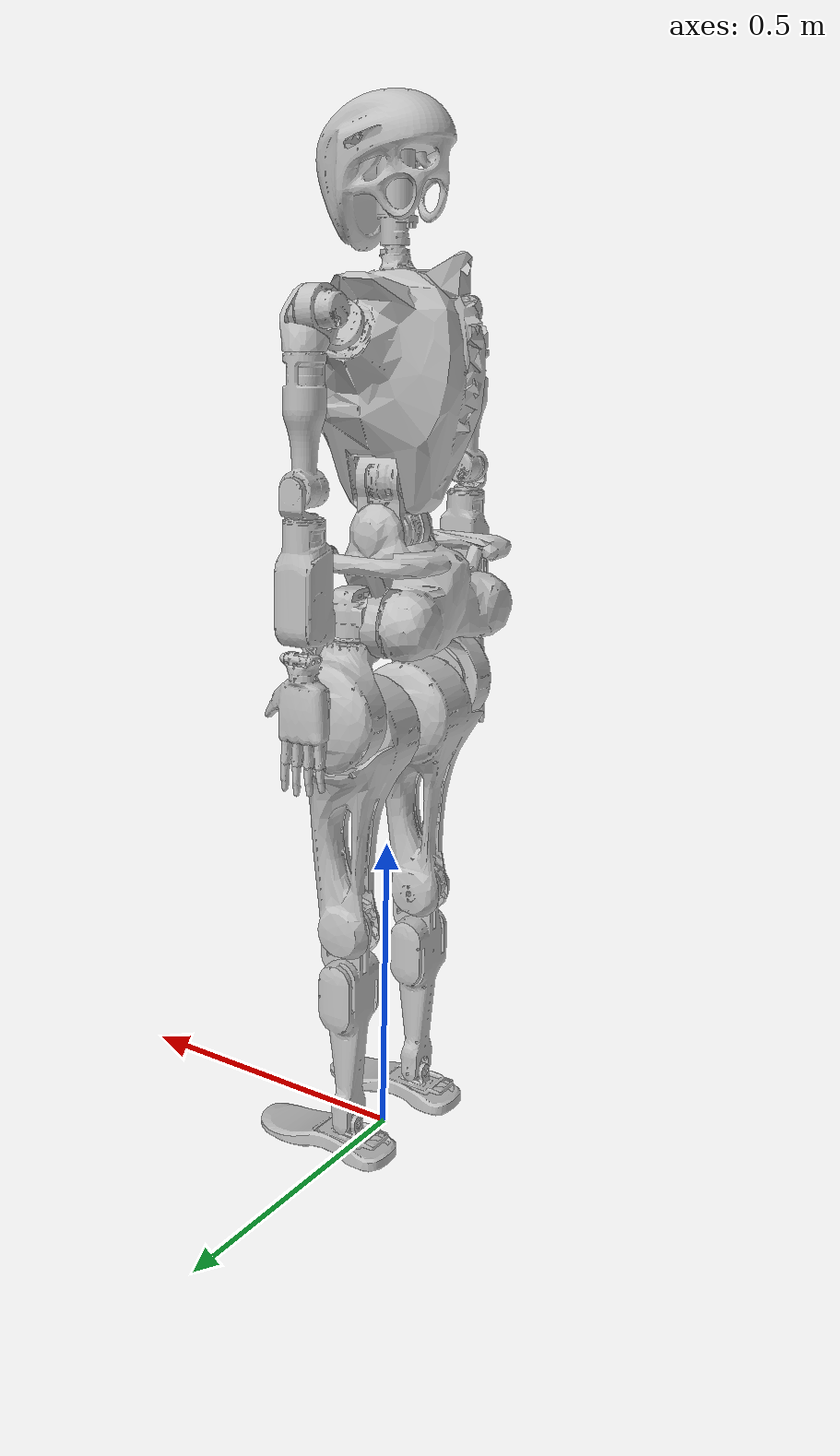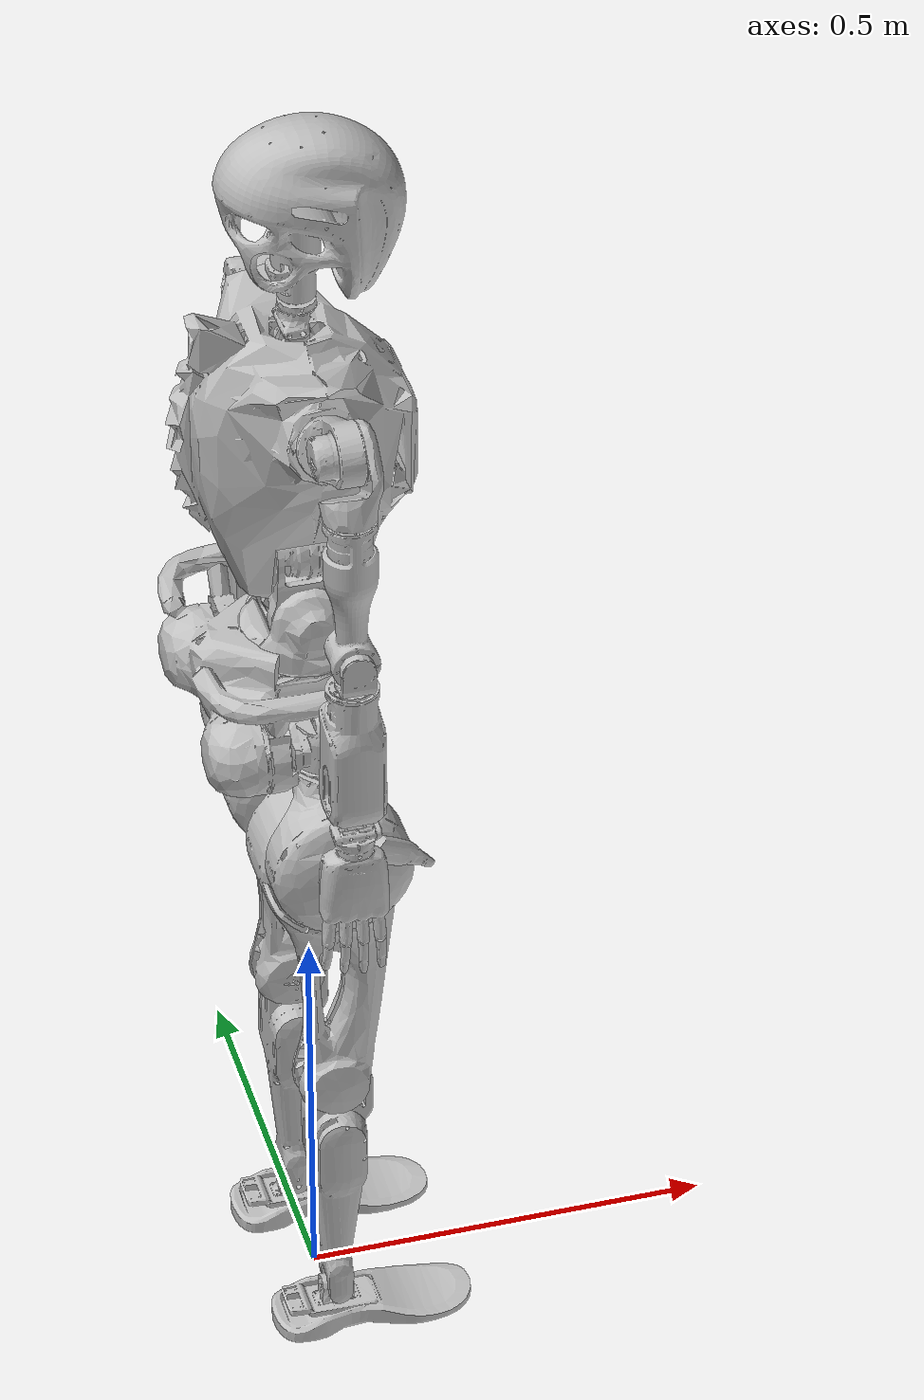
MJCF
<mujoco model="gr1t2">
    <compiler angle="radian" meshdir="assets" autolimits="true"/>

    <default>
        <default class="gr1t2">
            <joint damping="1" armature="0.1"/>
            <default class="visual">
                <geom type="mesh" contype="0" conaffinity="0" group="2"/>
            </default>
            <default class="collision">
                <geom group="3" mass="0" density="0"/>
                <default class="base_collision">
                    <geom type="capsule" size=".014"/>
                </default>
            </default>
            <site size="0.001" rgba="0.5 0.5 0.5 0.3" group="4"/>
        </default>
    </default>

    <asset>
        <mesh name="base" file="base.STL"/>
        <mesh name="link_left_thigh_roll" file="l_thigh_roll.STL"/>
        <mesh name="link_left_thigh_yaw" file="l_thigh_yaw.STL"/>
        <mesh name="link_left_thigh_pitch" file="l_thigh_pitch.STL"/>
        <mesh name="link_left_shank_pitch" file="l_shank_pitch.STL"/>
        <mesh name="link_left_foot_pitch" file="l_foot_pitch.STL"/>
        <mesh name="link_left_foot_roll" file="l_foot_roll.STL"/>
        <mesh name="link_right_thigh_roll" file="r_thigh_roll.STL"/>
        <mesh name="link_right_thigh_yaw" file="r_thigh_yaw.STL"/>
        <mesh name="link_right_thigh_pitch" file="r_thigh_pitch.STL"/>
        <mesh name="link_right_shank_pitch" file="r_shank_pitch.STL"/>
        <mesh name="link_right_foot_pitch" file="r_foot_pitch.STL"/>
        <mesh name="link_right_foot_roll" file="r_foot_roll.STL"/>
        <mesh name="link_waist_yaw" file="waist_yaw.STL"/>
        <mesh name="link_waist_pitch" file="waist_pitch.STL"/>
        <mesh name="link_waist_roll" file="waist_roll.STL"/>
        <mesh name="link_head_yaw" file="head_yaw.STL"/>
        <mesh name="link_head_roll" file="head_roll.STL"/>
        <mesh name="link_head_pitch" file="head_pitch.STL"/>
        <mesh name="link_left_upper_arm_pitch" file="l_upper_arm_pitch.STL"/>
        <mesh name="link_left_upper_arm_roll" file="l_upper_arm_roll.STL"/>
        <mesh name="link_left_upper_arm_yaw" file="l_upper_arm_yaw.STL"/>
        <mesh name="link_left_lower_arm_pitch" file="l_lower_arm_pitch.STL"/>
        <mesh name="link_left_hand_yaw" file="l_hand_yaw.STL"/>
        <mesh name="link_left_hand_roll" file="l_hand_roll.STL"/>
        <mesh name="link_left_hand_pitch" file="l_hand_pitch.STL"/>
        <mesh name="link_right_upper_arm_pitch" file="r_upper_arm_pitch.STL"/>
        <mesh name="link_right_upper_arm_roll" file="r_upper_arm_roll.STL"/>
        <mesh name="link_right_upper_arm_yaw" file="r_upper_arm_yaw.STL"/>
        <mesh name="link_right_lower_arm_pitch" file="r_lower_arm_pitch.STL"/>
        <mesh name="link_right_hand_yaw" file="r_hand_yaw.STL"/>
        <mesh name="link_right_hand_roll" file="r_hand_roll.STL"/>
        <mesh name="link_right_hand_pitch" file="r_hand_pitch.STL"/>
    </asset>

    <worldbody>
        <light mode="targetbodycom" target="base" pos="2 0 2.5"/>

        <body name="base" pos="0 0 0.95" childclass="gr1t2">
            <inertial pos="-0.048532 -0.00089322 -0.032851" quat="0.359123 0.355323 -0.61214 0.608326" mass="4.9859" diaginertia="0.0502243 0.0443403 0.0167704"/>
            <freejoint/>

            <geom class="visual" rgba="0.75294 0.75294 0.75294 1" mesh="base"/>
            <body name="link_left_thigh_roll" pos="-0.048 0.105 -0.0575">
                <inertial pos="0.042108 5.3388e-05 0.0025561" quat="0.000951199 0.75733 0.00226652 0.653028" mass="1.24084" diaginertia="0.00139721 0.00109616 0.000971712"/>
                <joint name="joint_left_hip_roll" pos="0 0 0" axis="1 0 0" range="-0.09 0.79"/>
                <geom class="visual" rgba="0.75294 0.75294 0.75294 1" mesh="link_left_thigh_roll"/>
                <geom class="collision" size="0.05 0.03" pos="0 0 0" quat="0.707107 0 0.707107 0" type="capsule" rgba="0.752941 0.752941 0.752941 1"/>
                <body name="link_left_thigh_yaw" pos="0.048 0 -0.0305">
                    <inertial pos="-0.00036975 0.048008 -0.10263" quat="0.703435 0.0400874 -0.0739438 0.705766" mass="3.9947" diaginertia="0.0141906 0.00974878 0.00712104"/>
                    <joint name="joint_left_hip_yaw" pos="0 0 0" axis="0 0 1" range="-0.7 0.7"/>
                    <geom class="visual" rgba="0.75294 0.75294 0.75294 1" mesh="link_left_thigh_yaw"/>
                    <body name="link_left_thigh_pitch" pos="0 0 -0.11">
                        <inertial pos="0.0023293 -0.018978 -0.09346" quat="0.709706 0.0401023 -0.0585618 0.700914" mass="6.1575" diaginertia="0.0860379 0.0814364 0.0141615"/>
                        <joint name="joint_left_hip_pitch" pos="0 0 0" axis="0 1 0" range="-1.75 0.7"/>
                        <geom class="visual" rgba="0.75294 0.75294 0.75294 1" mesh="link_left_thigh_pitch"/>
                        <geom class="collision" size="0.05 0.125" pos="0 0 -0.15" type="capsule" rgba="0.75294 0.75294 0.75294 1"/>
                        <body name="link_left_shank_pitch" pos="0 0 -0.359995">
                            <inertial pos="0.0026504 0.0058504 -0.12267" quat="0.668844 0.0129955 -0.000303131 0.743289" mass="2.4196" diaginertia="0.0211876 0.0209532 0.00159024"/>
                            <joint name="joint_left_knee_pitch" pos="0 0 0" axis="0 1 0" range="-0.09 1.92"/>
                            <geom class="visual" rgba="0.752941 0.752941 0.752941 1" mesh="link_left_shank_pitch"/>
                            <geom class="collision" size="0.05 0.1" pos="0 0 -0.15" type="capsule" rgba="0.75294 0.75294 0.75294 1"/>
                            <body name="link_left_foot_pitch" pos="0 0 -0.34">
                                <inertial pos="-1.2374e-08 -1.3607e-08 0" quat="0.707107 0.707107 0 0" mass="0.049737" diaginertia="5.2e-06 4.41e-06 3.71e-06"/>
                                <joint name="joint_left_ankle_pitch" pos="0 0 0" axis="0 1 0" range="-1.05 0.52"/>
                                <geom class="visual" rgba="0.75294 0.75294 0.75294 1" mesh="link_left_foot_pitch"/>
                                <body name="link_left_foot_roll">
                                    <inertial pos="0.035077 0.00026914 -0.036774" quat="7.10825e-05 0.726356 -2.08931e-05 0.687319" mass="0.591221" diaginertia="0.00282255 0.00258496 0.000391055"/>
                                    <joint name="joint_left_ankle_roll" pos="0 0 0" axis="1 0 0" range="-0.44 0.44"/>
                                    <geom class="visual" rgba="0.75294 0.75294 0.75294 1" mesh="link_left_foot_roll"/>
                                    <geom class="collision" name="l_foot_1" size="0.02 0.10" pos="0.05 0.02 -0.035" quat="0.707105 0 0.707108 0" type="capsule" rgba="0.75294 0.75294 0.75294 1"/>
                                    <geom class="collision" name="l_foot_2" size="0.02 0.10" pos="0.05 -0.02 -0.035" quat="0.707105 0 0.707108 0" type="capsule" rgba="0.75294 0.75294 0.75294 1"/>
                                </body>
                            </body>
                        </body>
                    </body>
                </body>
            </body>
            <body name="link_right_thigh_roll" pos="-0.048 -0.105 -0.0575">
                <inertial pos="0.042109 -5.244e-05 0.0025563" quat="-0.000958227 0.757316 -0.00228287 0.653044" mass="1.2408" diaginertia="0.00139725 0.00109626 0.000971768"/>
                <joint name="joint_right_hip_roll" pos="0 0 0" axis="1 0 0" range="-0.79 0.09"/>
                <geom class="visual" rgba="0.75294 0.75294 0.75294 1" mesh="link_right_thigh_roll"/>
                <geom class="collision" size="0.05 0.03" pos="0 0 0" quat="0.707107 0 0.707107 0" type="capsule" rgba="0.752941 0.752941 0.752941 1"/>
                <body name="link_right_thigh_yaw" pos="0.048 0 -0.0305">
                    <inertial pos="-0.000369 -0.048008 -0.10263" quat="0.705764 -0.0739587 0.0400772 0.703435" mass="3.9947" diaginertia="0.0141904 0.00974868 0.00712096"/>
                    <joint name="joint_right_hip_yaw" pos="0 0 0" axis="0 0 1" range="-0.7 0.7"/>
                    <geom class="visual" rgba="0.75294 0.75294 0.75294 1" mesh="link_right_thigh_yaw"/>
                    <body name="link_right_thigh_pitch" pos="0 0 -0.11">
                        <inertial pos="0.0023609 0.019072 -0.093254" quat="0.70026 -0.0586384 0.040433 0.710326" mass="6.1575" diaginertia="0.0861752 0.0815583 0.0142018"/>
                        <joint name="joint_right_hip_pitch" pos="0 0 0" axis="0 1 0" range="-1.75 0.7"/>
                        <geom class="visual" rgba="0.75294 0.75294 0.75294 1" mesh="link_right_thigh_pitch"/>
                        <geom class="collision" size="0.05 0.125" pos="0 0 -0.15" type="capsule" rgba="0.75294 0.75294 0.75294 1"/>
                        <body name="link_right_shank_pitch" pos="0 0 -0.359995">
                            <inertial pos="0.0026636 -0.0058849 -0.11601" quat="0.742943 -0.000565827 0.013187 0.669224" mass="2.4196" diaginertia="0.0211282 0.0208909 0.00158776"/>
                            <joint name="joint_right_knee_pitch" pos="0 0 0" axis="0 1 0" range="-0.09 1.92"/>
                            <geom class="visual" rgba="0.752941 0.752941 0.752941 1" mesh="link_right_shank_pitch"/>
                            <geom class="collision" size="0.05 0.1" pos="0 0 -0.15" type="capsule" rgba="0.75294 0.75294 0.75294 1"/>
                            <body name="link_right_foot_pitch" pos="0 0 -0.34">
                                <inertial pos="-1.2374e-08 1.3607e-08 -2.1195e-10" quat="0.707107 0.707107 0 0" mass="0.049737" diaginertia="5.2e-06 4.41e-06 3.71e-06"/>
                                <joint name="joint_right_ankle_pitch" pos="0 0 0" axis="0 1 0" range="-1.05 0.52"/>
                                <geom class="visual" rgba="0.752941 0.752941 0.752941 1" mesh="link_right_foot_pitch"/>
                                <body name="link_right_foot_roll">
                                    <inertial pos="0.035078 -0.00026903 -0.036775" quat="-8.08951e-05 0.726358 2.37681e-05 0.687317" mass="0.59122" diaginertia="0.00282244 0.00258489 0.000391023"/>
                                    <joint name="joint_right_ankle_roll" pos="0 0 0" axis="1 0 0" range="-0.44 0.44"/>
                                    <geom class="visual" rgba="0.752941 0.752941 0.752941 1" mesh="link_right_foot_roll"/>
                                    <geom class="collision" name="r_foot_1" size="0.02 0.10" pos="0.05 0.02 -0.035" quat="0.707105 0 0.707108 0" type="capsule" rgba="0.752941 0.752941 0.752941 1"/>
                                    <geom class="collision" name="r_foot_2" size="0.02 0.10" pos="0.05 -0.02 -0.035" quat="0.707105 0 0.707108 0" type="capsule" rgba="0.752941 0.752941 0.752941 1"/>
                                </body>
                            </body>
                        </body>
                    </body>
                </body>
            </body>
            <body name="link_waist_yaw" pos="0 0 0.0065">
                <inertial pos="-0.0049526 -0.00090609 0.0262" quat="0.542631 0.529181 -0.457917 0.464576" mass="0.507438" diaginertia="0.00142661 0.00109837 0.000824081"/>
                <joint name="joint_waist_yaw" pos="0 0 0" axis="0 0 1" range="-1.05 1.05"/>
                <geom class="visual" rgba="0.752941 0.752941 0.752941 1" mesh="link_waist_yaw"/>
                <geom class="collision" size="0.05 0.01" pos="0 0 -0.06" type="capsule" rgba="0.752941 0.752941 0.752941 1"/>
                <body name="link_waist_pitch" pos="0 0 0.057">
                    <inertial pos="0.0045612 -0.0044005 0.040369" quat="0.978202 -0.0539856 0.0371241 -0.197049" mass="2.90421" diaginertia="0.00850445 0.00848089 0.00320118"/>
                    <joint name="joint_waist_pitch" pos="0 0 0" axis="0 1 0" range="-0.52 1.22"/>
                    <geom class="visual" rgba="0.752941 0.752941 0.752941 1" mesh="link_waist_pitch"/>
                    <geom class="collision" size="0.05 0.03" pos="0 0 0" quat="0.707107 0.707107 0 0" type="capsule" rgba="0.752941 0.752941 0.752941 1"/>
                    <body name="link_waist_roll" pos="0 0 0.081">
                        <inertial pos="-0.0094995 8.7428e-05 0.16729" quat="0.999359 -0.000385668 -0.0357383 0.00217327" mass="7.54469" diaginertia="0.063061 0.0510142 0.0384047"/>
                        <joint name="joint_waist_roll" pos="0 0 0" axis="1 0 0" range="-0.7 0.7"/>
                        <geom class="visual" rgba="0.752941 0.752941 0.752941 1" mesh="link_waist_roll"/>
                        <geom class="collision" size="0.1 0.07" pos="0 0 0.15" type="capsule" rgba="0.752941 0.752941 0.752941 1"/>
                        <body name="link_torso" pos="0 0 0.160213">
                            <inertial pos="0 0 0" mass="0" diaginertia="0 0 0"/>
                            <body name="link_head_pitch" pos="0.001 -0.000160513 0.144787">
                                <inertial pos="0.00043792 1.5503e-08 -1.1298e-08" quat="0.707107 0.707107 0 0" mass="0.00543512" diaginertia="3.6e-07 3.6e-07 7e-08"/>
                                <joint name="joint_head_pitch" pos="0 0 0" axis="0 1 0" range="-0.87 0.87"/>
                                <geom class="visual" rgba="0.752941 0.752941 0.752941 1" mesh="link_head_pitch"/>
                                <body name="link_head_roll">
                                    <inertial pos="-0.003976 2.2544e-05 0.015347" quat="0.669576 0.669576 0.227306 -0.227306" mass="0.0713171" diaginertia="3.07787e-05 2.49813e-05 2.039e-05"/>
                                    <joint name="joint_head_roll" pos="0 0 0" axis="1 0 0" range="-0.35 0.35"/>
                                    <geom class="visual" rgba="0.752941 0.752941 0.752941 1" mesh="link_head_roll"/>
                                    <body name="link_head_yaw" pos="0 5.373e-05 0.036">
                                        <inertial pos="0.02323 0.00026918 0.11024" quat="0.694627 -0.130794 -0.130531 0.695232" mass="1.38984" diaginertia="0.00988205 0.00835953 0.00593029"/>
                                        <joint name="joint_head_yaw" pos="0 0 0" axis="0 0 1" range="-2.71 2.71"/>
                                        <geom class="visual" rgba="0.752941 0.752941 0.752941 1" mesh="link_head_yaw"/>
                                        <geom class="collision" size="0.07" pos="0 0 0.1" rgba="0.75294 0.75294 0.75294 1"/>
                                    </body>
                                </body>
                            </body>
                            <body name="link_left_upper_arm_pitch" pos="0 0.126624 0.0590455" quat="0.976296 0.216441 0 0">
                                <inertial pos="0.0054188 0.05902 0.00011843" quat="0.719753 0.692726 -0.0305981 -0.0339146" mass="0.78809" diaginertia="0.00077767 0.000679926 0.000492134"/>
                                <joint name="joint_left_shoulder_pitch" pos="0 0 0" axis="0 1 0" range="-2.79 1.92"/>
                                <geom class="visual" rgba="0.752941 0.752941 0.752941 1" mesh="link_left_upper_arm_pitch"/>
                                <body name="link_left_upper_arm_roll" pos="0 0.067 0" quat="0.976296 -0.216441 0 0">
                                    <inertial pos="0.01986 0.02608 -0.025535" quat="0.893234 0.357735 0.271874 -0.0156034" mass="0.1786" diaginertia="0.00023545 0.000209436 9.26143e-05"/>
                                    <joint name="joint_left_shoulder_roll" pos="0 0 0" axis="1 0 0" range="-0.57 3.27"/>
                                    <geom class="visual" rgba="0.752941 0.752941 0.752941 1" mesh="link_left_upper_arm_roll"/>
                                    <geom class="collision" size="0.04" pos="0 0 0" rgba="0.75294 0.75294 0.75294 1"/>
                                    <body name="link_left_upper_arm_yaw" pos="0 0.0403814 -0.0572328">
                                        <inertial pos="0.00010029 0.0012809 -0.097194" quat="0.999843 0.0176975 -0.000104318 -0.000563119" mass="0.98085"
                                                  diaginertia="0.00618618 0.00611969 0.000570189"/>
                                        <joint name="joint_left_shoulder_yaw" pos="0 0 0" axis="0 0 1" range="-2.97 2.97"/>
                                        <geom class="visual" rgba="0.752941 0.752941 0.752941 1" mesh="link_left_upper_arm_yaw"/>
                                        <geom class="collision" size="0.03 0.055" pos="0 0 -0.07" type="capsule" rgba="0.752941 0.752941 0.752941 1"/>
                                        <body name="link_left_lower_arm_pitch" pos="0 0.00125501 -0.188749">
                                            <inertial pos="7.6884e-09 0.020584 -0.020113" quat="0.676835 -0.204682 0.204682 0.676835" mass="0.059535"
                                                      diaginertia="3.12523e-05 2.796e-05 1.40177e-05"/>
                                            <joint name="joint_left_elbow_pitch" pos="0 0 0" axis="0 1 0" range="-2.27 2.27"/>
                                            <geom class="visual" rgba="0.752941 0.752941 0.752941 1" mesh="link_left_lower_arm_pitch"/>
                                            <body name="link_left_hand_yaw" pos="0 0.000299612 -0.0404989">
                                                <inertial pos="-0.00048885 0.0013916 -0.08204" quat="0.99956 -0.00194832 -2.05965e-05 0.0296028" mass="1.2684"
                                                          diaginertia="0.00419493 0.00409086 0.000847261"/>
                                                <joint name="joint_left_wrist_yaw" pos="0 0 0" axis="0 0 1" range="-2.97 2.97"/>
                                                <geom class="visual" rgba="0.752941 0.752941 0.752941 1" mesh="link_left_hand_yaw"/>
                                                <geom class="collision" size="0.035 0.085" pos="0 0 -0.08" type="capsule" rgba="0.752941 0.752941 0.752941 1"/>
                                                <body name="link_left_hand_roll" pos="0 0.001337 -0.20108">
                                                    <inertial pos="1.566e-08 -0.00043791 -2.922e-06" quat="0.5 0.5 0.5 0.5" mass="0.0054351" diaginertia="3.6e-07 3.6e-07 7e-08"/>
                                                    <joint name="joint_left_wrist_roll" pos="0 0 0" axis="1 0 0" range="-0.96 0.87"/>
                                                    <geom class="visual" rgba="0.752941 0.752941 0.752941 1" mesh="link_left_hand_roll"/>
                                                    <body name="link_left_hand_pitch">
                                                        <inertial pos="0.0058876 -0.0010755 -0.082238" quat="0.813153 0.040279 0.00796725 0.580599" mass="0.54891"
                                                                  diaginertia="0.00152687 0.00108682 0.000582753"/>
                                                        <joint name="joint_left_wrist_pitch" pos="0 0 0" axis="0 1 0" range="-0.61 0.61"/>
                                                        <geom class="visual" rgba="0.752941 0.752941 0.752941 1" mesh="link_left_hand_pitch"/>
                                                        <geom class="collision" size="0.04" pos="0 0 -0.07" rgba="0.75294 0.75294 0.75294 1"/>
                                                    </body>
                                                </body>
                                            </body>
                                        </body>
                                    </body>
                                </body>
                            </body>
                            <body name="link_right_upper_arm_pitch" pos="0 -0.126624 0.0590455" quat="0.976296 -0.21644 0 0">
                                <inertial pos="0.0054189 -0.058978 0.0001189" quat="0.688371 0.723998 0.033838 0.0287698" mass="0.78809" diaginertia="0.000777007 0.000679609 0.000492064"/>
                                <joint name="joint_right_shoulder_pitch" pos="0 0 0" axis="0 1 0" range="-2.79 1.92"/>
                                <geom class="visual" rgba="0.752941 0.752941 0.752941 1" mesh="link_right_upper_arm_pitch"/>
                                <body name="link_right_upper_arm_roll" pos="0 -0.067 0" quat="0.976296 0.21644 0 0">
                                    <inertial pos="0.019868 -0.025881 -0.025684" quat="0.89443 -0.354722 0.271831 0.0165736" mass="0.1786" diaginertia="0.000235434 0.000209404 9.26224e-05"/>
                                    <joint name="joint_right_shoulder_roll" pos="0 0 0" axis="1 0 0" range="-3.27 0.57"/>
                                    <geom class="visual" rgba="0.752941 0.752941 0.752941 1" mesh="link_right_upper_arm_roll"/>
                                    <geom class="collision" size="0.04" pos="0 0 0" rgba="0.75294 0.75294 0.75294 1"/>
                                    <body name="link_right_upper_arm_yaw" pos="0 -0.04 -0.0575">
                                        <inertial pos="-0.00010032 -0.00063501 -0.097127" quat="0.999896 -0.0143971 0.000111836 0.000334005" mass="0.98085"
                                                  diaginertia="0.0061732 0.00610683 0.00057023"/>
                                        <joint name="joint_right_shoulder_yaw" pos="0 0 0" axis="0 0 1" range="-2.97 2.97"/>
                                        <geom class="visual" rgba="0.752941 0.752941 0.752941 1" mesh="link_right_upper_arm_yaw"/>
                                        <geom class="collision" size="0.03 0.055" pos="0 0 -0.07" type="capsule" rgba="0.752941 0.752941 0.752941 1"/>
                                        <body name="link_right_lower_arm_pitch" pos="0 0 -0.18853">
                                            <inertial pos="-7.6455e-09 -0.020449 -0.020249" quat="0.676142 0.20696 -0.20696 0.676142" mass="0.059535"
                                                      diaginertia="3.12637e-05 2.796e-05 1.40163e-05"/>
                                            <joint name="joint_right_elbow_pitch" pos="0 0 0" axis="0 1 0" range="-2.27 2.27"/>
                                            <geom class="visual" rgba="0.752941 0.752941 0.752941 1" mesh="link_right_lower_arm_pitch"/>
                                            <body name="link_right_hand_yaw" pos="0 -3.03303e-05 -0.0405">
                                                <inertial pos="0.00048881 -0.00084627 -0.082047" quat="0.999548 0.00527184 -7.7624e-05 0.0295879" mass="1.2684"
                                                          diaginertia="0.00419493 0.00409087 0.000847259"/>
                                                <joint name="joint_right_wrist_yaw" pos="0 0 0" axis="0 0 1" range="-2.97 2.97"/>
                                                <geom class="visual" rgba="0.752941 0.752941 0.752941 1" mesh="link_right_hand_yaw"/>
                                                <geom class="collision" size="0.035 0.085" pos="0 0 -0.08" type="capsule" rgba="0.752941 0.752941 0.752941 1"/>
                                                <body name="link_right_hand_roll" pos="0 0 -0.201084">
                                                    <inertial pos="-1.552e-08 0.00043792 -1.1275e-08" quat="0.5 0.5 0.5 0.5" mass="0.0054351" diaginertia="3.6e-07 3.6e-07 7e-08"/>
                                                    <joint name="joint_right_wrist_roll" pos="0 0 0" axis="1 0 0" range="-0.87 0.96"/>
                                                    <geom class="visual" rgba="0.752941 0.752941 0.752941 1" mesh="link_right_hand_roll"/>
                                                    <body name="link_right_hand_pitch">
                                                        <inertial pos="0.0058875 0.0016218 -0.082229" quat="0.580588 0.0098997 0.0375703 0.81327" mass="0.54891"
                                                                  diaginertia="0.00152691 0.00108681 0.000582768"/>
                                                        <joint name="joint_right_wrist_pitch" pos="0 0 0" axis="0 1 0" range="-0.61 0.61"/>
                                                        <geom class="visual" rgba="0.752941 0.752941 0.752941 1" mesh="link_right_hand_pitch"/>
                                                        <geom class="collision" size="0.04" pos="0 0 -0.07" rgba="0.75294 0.75294 0.75294 1"/>
                                                    </body>
                                                </body>
                                            </body>
                                        </body>
                                    </body>
                                </body>
                            </body>
                        </body>
                    </body>
                </body>
                <body name="link_imu" pos="-0.0645 0 -0.102"/>
            </body>
        </body>
    </worldbody>

    <actuator>
        <!-- left leg -->
        <motor class="gr1t2" name="link_left_hip_roll" joint="joint_left_hip_roll" ctrlrange="-80 80"/>
        <motor class="gr1t2" name="link_left_hip_yaw" joint="joint_left_hip_yaw" ctrlrange="-60 60"/>
        <motor class="gr1t2" name="link_left_hip_pitch" joint="joint_left_hip_pitch" ctrlrange="-160 160"/>
        <motor class="gr1t2" name="link_left_knee_pitch" joint="joint_left_knee_pitch" ctrlrange="-160 160"/>
        <motor class="gr1t2" name="link_left_ankle_pitch" joint="joint_left_ankle_pitch" ctrlrange="-16 16"/>
        <motor class="gr1t2" name="link_left_ankle_roll" joint="joint_left_ankle_roll" ctrlrange="-8 8"/>

        <!-- right leg -->
        <motor class="gr1t2" name="link_right_hip_roll" joint="joint_right_hip_roll" ctrlrange="-80 80"/>
        <motor class="gr1t2" name="link_right_hip_yaw" joint="joint_right_hip_yaw" ctrlrange="-60 60"/>
        <motor class="gr1t2" name="link_right_hip_pitch" joint="joint_right_hip_pitch" ctrlrange="-160 160"/>
        <motor class="gr1t2" name="link_right_knee_pitch" joint="joint_right_knee_pitch" ctrlrange="-160 160"/>
        <motor class="gr1t2" name="link_right_ankle_pitch" joint="joint_right_ankle_pitch" ctrlrange="-16 16"/>
        <motor class="gr1t2" name="link_right_ankle_roll" joint="joint_right_ankle_roll" ctrlrange="-8 8"/>

        <!-- waist -->
        <motor class="gr1t2" name="link_waist_yaw" joint="joint_waist_yaw" ctrlrange="-82.5 82.5"/>
        <motor class="gr1t2" name="link_waist_pitch" joint="joint_waist_pitch" ctrlrange="-82.5 82.5"/>
        <motor class="gr1t2" name="link_waist_roll" joint="joint_waist_roll" ctrlrange="-82.5 82.5"/>

        <!-- head -->
        <motor class="gr1t2" name="link_head_yaw" joint="joint_head_yaw" ctrlrange="-10.2 10.2"/>
        <motor class="gr1t2" name="link_head_roll" joint="joint_head_roll" ctrlrange="-3.95 3.95"/>
        <motor class="gr1t2" name="link_head_pitch" joint="joint_head_pitch" ctrlrange="-3.95 3.95"/>

        <!-- left arm -->
        <motor class="gr1t2" name="link_left_shoulder_pitch" joint="joint_left_shoulder_pitch" ctrlrange="-38 38"/>
        <motor class="gr1t2" name="link_left_shoulder_roll" joint="joint_left_shoulder_roll" ctrlrange="-38 38"/>
        <motor class="gr1t2" name="link_left_shoulder_yaw" joint="joint_left_shoulder_yaw" ctrlrange="-30 30"/>
        <motor class="gr1t2" name="link_left_elbow_pitch" joint="joint_left_elbow_pitch" ctrlrange="-30 30"/>
        <motor class="gr1t2" name="link_left_wrist_yaw" joint="joint_left_wrist_yaw" ctrlrange="-10.2 10.2"/>
        <motor class="gr1t2" name="link_left_wrist_roll" joint="joint_left_wrist_roll" ctrlrange="-3.95 3.95"/>
        <motor class="gr1t2" name="link_left_wrist_pitch" joint="joint_left_wrist_pitch" ctrlrange="-3.95 3.95"/>

        <!-- right arm -->
        <motor class="gr1t2" name="link_right_shoulder_pitch" joint="joint_right_shoulder_pitch" ctrlrange="-38 38"/>
        <motor class="gr1t2" name="link_right_shoulder_roll" joint="joint_right_shoulder_roll" ctrlrange="-38 38"/>
        <motor class="gr1t2" name="link_right_shoulder_yaw" joint="joint_right_shoulder_yaw" ctrlrange="-30 30"/>
        <motor class="gr1t2" name="link_right_elbow_pitch" joint="joint_right_elbow_pitch" ctrlrange="-30 30"/>
        <motor class="gr1t2" name="link_right_wrist_yaw" joint="joint_right_wrist_yaw" ctrlrange="-10.2 10.2"/>
        <motor class="gr1t2" name="link_right_wrist_roll" joint="joint_right_wrist_roll" ctrlrange="-3.95 3.95"/>
        <motor class="gr1t2" name="link_right_wrist_pitch" joint="joint_right_wrist_pitch" ctrlrange="-3.95 3.95"/>
    </actuator>
</mujoco>
